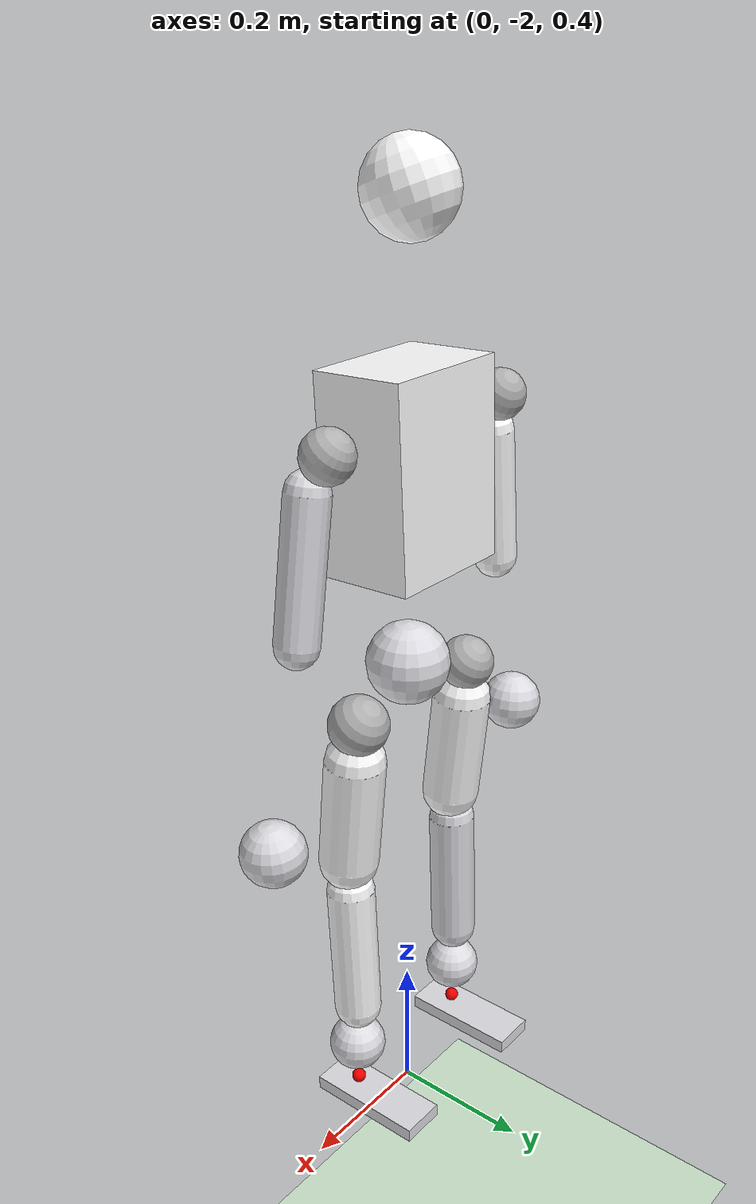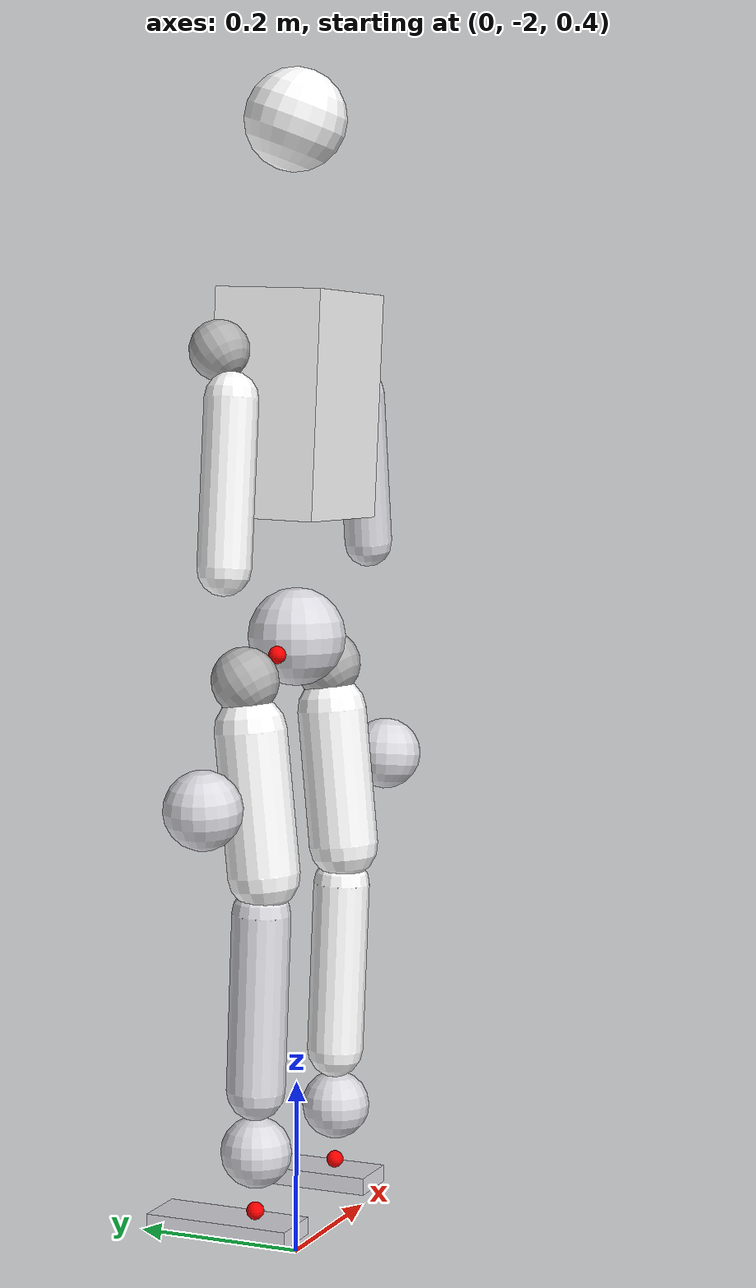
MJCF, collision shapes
<mujoco model="mini_phybot">
  <compiler angle="radian" meshdir="../meshes/" autolimits="true"/>
  <option timestep="0.002" iterations='10' solver='PGS' gravity='0 0 -9.81' apirate='1000'>
  </option>
  <size njmax="500" nconmax="100" />
  <default>
      <geom  condim='4' solref='0.001 2' friction='1.0 0.5 0.5'/>
      <equality solref='0.001 2'/>
  </default>
  <visual>
      <quality shadowsize='4096'/>
      <map force="0.1" zfar="30" znear='0.05'/>
      <rgba haze="0.15 0.25 0.35 1"/>
      <global offwidth="2560" offheight="1440" elevation="-20" azimuth="120"/>
  </visual>
  <default>
      <default class="phybot">
          <joint damping="1" armature="0.1"/>
          <default class="visual">
              <geom type="mesh" contype="0" conaffinity="0" group="2" />
          </default>
          <default class="collision">
              <geom group="3" mass="0" density="0" friction="1.0 0.5 0.5" />
              <default class="base_collision">
                  <geom type="capsule" size=".014" />
              </default>
          </default>
          <site size="0.001" rgba="0.5 0.5 0.5 0.3" group="4"/>
      </default>
  </default>
  <asset>
      <texture type="skybox" builtin="gradient" rgb1=".3 .5 .7" rgb2="0 0 0" width="32" height="512"/>
      <texture name="body" type="cube" builtin="flat" mark="cross" width="128" height="128" rgb1="0.8 0.6 0.4" rgb2="0.8 0.6 0.4" markrgb="1 1 1" random="0.01"/>
      <material name="body" texture="body" texuniform="true" rgba="0.8 0.6 .4 1"/>
      <texture name="grid" type="2d" builtin="checker" width="512" height="512" rgb1=".1 .2 .3" rgb2=".2 .3 .4"/>
      <material name="grid" texture="grid" texrepeat="1 1" texuniform="true" reflectance="0.02"/>
  </asset>
  <asset>
    <mesh name="base_link" file="base_link.STL"/>
    <mesh name="waist_yaw" file="waist_yaw.STL"/>
    <mesh name="neck_yaw" file="neck_yaw.STL"/>
    <mesh name="neck_pitch" file="neck_pitch.STL"/>
    <mesh name="right_shoulder_pitch" file="right_shoulder_pitch.STL"/>
    <mesh name="right_shoulder_roll" file="right_shoulder_roll.STL"/>
    <mesh name="right_shoulder_yaw" file="right_shoulder_yaw.STL"/>
    <mesh name="right_elbow_pitch" file="right_elbow_pitch.STL"/>
    <mesh name="right_elbow_yaw" file="right_elbow_yaw.STL"/>
    <mesh name="left_shoulder_pitch" file="left_shoulder_pitch.STL"/>
    <mesh name="left_shoulder_roll" file="left_shoulder_roll.STL"/>
    <mesh name="left_shoulder_yaw" file="left_shoulder_yaw.STL"/>
    <mesh name="left_elbow_pitch" file="left_elbow_pitch.STL"/>
    <mesh name="left_elbow_yaw" file="left_elbow_yaw.STL"/>
    <mesh name="right_hip_pitch" file="right_hip_pitch.STL"/>
    <mesh name="right_hip_roll" file="right_hip_roll.STL"/>
    <mesh name="right_hip_yaw" file="right_hip_yaw.STL"/>
    <mesh name="right_knee" file="right_knee.STL"/>
    <mesh name="right_ankle_pitch" file="right_ankle_pitch.STL"/>
    <mesh name="right_ankle_roll" file="right_ankle_roll.STL"/>
    <mesh name="left_hip_pitch" file="left_hip_pitch.STL"/>
    <mesh name="left_hip_roll" file="left_hip_roll.STL"/>
    <mesh name="left_hip_yaw" file="left_hip_yaw.STL"/>
    <mesh name="left_knee" file="left_knee.STL"/>
    <mesh name="left_ankle_pitch" file="left_ankle_pitch.STL"/>
    <mesh name="left_ankle_roll" file="left_ankle_roll.STL"/>
    <texture builtin="gradient" height="100" rgb1=".4 .5 .6" rgb2="0 0 0" type="skybox" width="100"/>
    <texture name="texplane" type="2d" builtin="checker" rgb1=".2 .3 .4" rgb2=".1 0.15 0.2" width="100" height="100"/>
    <material name="MatPlane" reflectance="0.5" texture="texplane" texrepeat="1 1" texuniform="true"/>
  </asset>

  <worldbody>
    <geom name="floor" friction="1 .5 .5" pos="0 0 0.0" size="50 50 0.125" type="plane" material="MatPlane" condim="3" conaffinity="1" contype="1" group="2" rgba="0.8 0.9 0.8 1"></geom>
    <light cutoff="100" diffuse="1 1 1" dir="-0 0 -1.3" directional="true" exponent="1" pos="0 0 1.3" specular=".1 .1 .1" castshadow="false"/>
    <body name="base_link" pos="0 -2.0 1.1" euler="0 0 1.5708" childclass="phybot" >
      <inertial pos="0.00019197 -1.3871e-05 0.02499" quat="0.999999 0.000213974 0.00165245 0.00039263" mass="3.483" diaginertia="0.0124403 0.0118407 0.00569611"/>
      <joint name="floating_base_joint" type="free" limited="false" actuatorfrclimited="false"/>
      <geom name="base_link_visual" type="mesh" contype="0" conaffinity="0" group="1" density="0" rgba="0.86667 0.86667 0.8902 1" mesh="base_link"/>
      <geom name="base_link_collision" type="sphere" rgba="0.86667 0.86667 0.8902 1" pos="3.93914348e-04 -2.38613598e-05  1.63388587e-02" quat="9.99968586e-01  4.04744226e-04  7.65710487e-03 -2.00791714e-03" size="0.056"/>
      <body name="left_hip_pitch" pos="-0.0011251 0.056687 0">
        <inertial pos="-0.0068808 0.054848 -1.3414e-09" quat="0.29053 0.644665 -0.29053 0.644665" mass="0.8954" diaginertia="0.00078395 0.000707642 0.000669938"/>
        <joint name="left_hip_pitch" pos="0 0 0" axis="0 1 0" range="-2.62 2.62" actuatorfrcrange="-200 200"/>
        <site type="sphere" name="left_hip_pitch" pos="0 0 0" size="0.01" rgba="1 0 0 1" group="0" />
        <geom name="left_hip_pitch_visual" type="mesh" contype="0" conaffinity="0" group="1" density="0" rgba="0.86667 0.86667 0.8902 1" mesh="left_hip_pitch"/>
        <body name="left_hip_roll" pos="0.0011251 0.057313 0">
          <inertial pos="0.01492 8.7304e-06 -0.028255" quat="0.938259 0.00179946 -0.345928 -0.00066454" mass="0.108953" diaginertia="0.000179064 0.000147599 0.000115645"/>
          <joint name="left_hip_roll" pos="0 0 0" axis="1 0 0" range="-0.05 2.79" actuatorfrcrange="-80 80"/>
          <site type="sphere" name="left_hip_roll" pos="0 0 0" size="0.01" rgba="1 0 0 1" group="0" />
          <geom name="left_hip_roll_visual" type="mesh" contype="0" conaffinity="0" group="1" density="0" rgba="0.69804 0.69804 0.69804 1" mesh="left_hip_roll"/>
          <geom name="left_hip_roll_collision" type="sphere" rgba="0.69804 0.69804 0.69804 1" pos="1.20070147e-02  5.07088204e-08 -2.46034415e-02" quat="9.52643596e-01 1.37744501e-05 3.04089096e-01 7.55203554e-06" size="0.038"/>
          <body name="left_hip_yaw" pos="0 0 -0.0555">
            <inertial pos="-0.0008226 -0.00012128 -0.06312" quat="0.999666 -0.00344606 0.0253512 -0.0035266" mass="0.934948" diaginertia="0.00294268 0.00279093 0.000837028"/>
            <joint name="left_hip_yaw" pos="0 0 0" axis="0 0 1" range="-2.09 2.09" actuatorfrcrange="-58 58"/>
            <site type="sphere" name="left_hip_yaw" pos="0 0 0" size="0.01" rgba="1 0 0 1" group="0" />
            <geom name="left_hip_yaw_visual" type="mesh" contype="0" conaffinity="0" group="1" density="0" rgba="1 1 1 1" mesh="left_hip_yaw"/>
            <geom name="left_hip_yaw_collision" type="capsule" rgba="1 1 1 1" pos="-0.00243323 -0.00015081 -0.10370309" quat="0.99880757 -0.00296817  0.04855064 -0.00417929" size="0.04064149 0.08 0."/>
            <body name="left_knee" pos="-0.015 0 -0.1755">
              <inertial pos="0.0057066 0.00012257 -0.094854" quat="0.712658 -0.0171167 -0.0156661 0.701128" mass="2.02725" diaginertia="0.0228032 0.022792 0.00193946"/>
              <joint name="left_knee" pos="0 0 0" axis="0 1 0" range="0 2.44" actuatorfrcrange="-80 80"/>
              <site type="sphere" name="left_knee" pos="0 0 0" size="0.01" rgba="1 0 0 1" group="0" />
              <geom name="left_knee_visual" type="mesh" contype="0" conaffinity="0" group="1" density="0" rgba="0.86667 0.86667 0.8902 1" mesh="left_knee"/>
              <geom name="left_knee_collision" type="capsule" rgba="0.86667 0.86667 0.8902 1" pos="1.10484653e-02 -3.43982299e-05 -1.52084793e-01" quat="9.99842996e-01 -8.01998231e-04 -1.76969547e-02 -3.96174269e-04" size="0.0330737  0.10 0."/>
              <body name="left_ankle_pitch" pos="0.015 0 -0.322">
                <inertial pos="-0.00055628 0.0010747 -0.021143" quat="0.99979 -0.014192 0.0147276 0.00123859" mass="1.0809" diaginertia="0.00163322 0.00159632 0.000679905"/>
                <joint name="left_ankle_pitch" pos="0 0 0" axis="0 1 0" range="-1.4 1.4" actuatorfrcrange="-58 58"/>
                <site type="sphere" name="left_ankle_pitch" pos="0 0 0" size="0.01" rgba="1 0 0 1" group="0" />
                <geom name="left_ankle_pitch_visual" type="mesh" contype="0" conaffinity="0" group="1" density="0" rgba="0.86667 0.86667 0.8902 1" mesh="left_ankle_pitch"/>
                <geom name="left_ankle_pitch_collision" type="sphere" rgba="0.86667 0.86667 0.8902 1" pos="-0.00049111 -0.00109902 -0.0" quat="0.999841    0.01111152  0.01377939 -0.00215429" size="0.04"/>
                <body name="left_ankle_roll" pos="0 0 -0.067">
                  <inertial pos="0.054011 3.8519e-08 -0.01971" quat="0 0.714748 0 0.699382" mass="0.333227" diaginertia="0.00087423 0.00080699 0.00015472"/>
                  <joint name="left_ankle_roll" pos="0 0 0" axis="1 0 0" range="-0.61 0.61" actuatorfrcrange="-9 9"/>
                  <site type="sphere" name="left_ankle_roll" pos="0 0 0" size="0.01" rgba="1 0 0 1" group="0" />
                  <geom name="left_ankle_roll_visual" type="mesh" contype="0" conaffinity="0" group="1" density="0" rgba="0.86667 0.86667 0.8902 1" mesh="left_ankle_roll"/>
                  <geom name="left_ankle_roll_collision_1" type="box" rgba="0.86667 0.86667 0.8902 1" pos="0.035  0.0 -0.02" quat="0 0.707 0 0.707" size="0.01 0.032 0.085"/>
                </body>
              </body>
            </body>
          </body>
        </body>
      </body>

      <body name="right_hip_pitch" pos="-0.0011251 -0.056687 0">
        <inertial pos="-0.00688082 -0.0548479 1.34132e-09" quat="0.644665 0.29053 -0.644665 0.29053" mass="0.8954" diaginertia="0.00078395 0.000707642 0.000669938"/>
        <joint name="right_hip_pitch" pos="0 0 0" axis="0 1 0" range="-2.62 2.62" actuatorfrcrange="-200 200"/>
        <geom name="right_hip_pitch_visual" type="mesh" contype="0" conaffinity="0" group="1" density="0" rgba="0.866667 0.866667 0.890196 1" mesh="right_hip_pitch"/>
        <body name="right_hip_roll" pos="0.0011251 -0.057313 0">
          <inertial pos="0.0149201 8.76282e-06 -0.0282555" quat="0.938262 0.00179705 0.34592 0.000663076" mass="0.108953" diaginertia="0.000179066 0.000147599 0.000115647"/>
          <joint name="right_hip_roll" pos="0 0 0" axis="1 0 0" range="-2.79 0.05" actuatorfrcrange="-80 80"/>
          <geom name="right_hip_roll_visual" type="mesh" contype="0" conaffinity="0" group="1" density="0" rgba="0.698039 0.698039 0.698039 1" mesh="right_hip_roll"/>
          <geom name="right_hip_roll_collision" type="sphere" rgba="0.698039 0.698039 0.698039 1" pos="1.20070147e-02  1.03464490e-07 -2.46034414e-02" quat="9.52643596e-01 1.10664726e-05 3.04089097e-01 6.66475968e-06" size="0.04"/>
          <body name="right_hip_yaw" pos="0 0 -0.0555">
            <inertial pos="-0.000822864 0.000123815 -0.0631195" quat="0.999666 0.00353226 0.025353 0.00366827" mass="0.934946" diaginertia="0.00294266 0.00279091 0.000837013"/>
            <joint name="right_hip_yaw" pos="0 0 0" axis="0 0 1" range="-2.09 2.09" actuatorfrcrange="-58 58"/>
            <geom name="right_hip_yaw_visual" type="mesh" contype="0" conaffinity="0" group="1" density="0" rgba="1 1 1 1" mesh="right_hip_yaw"/>
            <geom name="right_hip_yaw_collision" type="capsule" rgba="1 1 1 1" pos="-0.0024334   0.00012787 -0.1037029" quat="0.99880961 0.00283586 0.04854734 0.00380364" size="0.04064174 0.08 0."/>
            <body name="right_knee" pos="-0.015 0 -0.1755">
              <inertial pos="0.00571152 -7.66968e-05 -0.0951258" quat="0.681839 -0.0159342 -0.016778 0.731136" mass="2.02816" diaginertia="0.0228498 0.0228396 0.00194092"/>
              <joint name="right_knee" pos="0 0 0" axis="0 1 0" range="0 2.44" actuatorfrcrange="-80 80"/>
              <geom name="right_knee_visual" type="mesh" contype="0" conaffinity="0" group="1" density="0" rgba="1 1 1 1" mesh="right_knee"/>
              <geom name="right_knee_collision" type="capsule" rgba="1 1 1 1" pos="0.01106952  0.00062785 -0.15450012" quat="9.99836214e-01  5.17738930e-03 -1.73417982e-02  3.80929315e-05" size="0.0331164  0.10 0."/>
              <body name="right_ankle_pitch" pos="0.015 0 -0.322">
                <inertial pos="-0.000557668 -0.00117399 -0.0211957" quat="0.999784 0.0146083 0.0147284 -0.00119151" mass="1.08" diaginertia="0.00163124 0.00159575 0.000678311"/>
                <joint name="right_ankle_pitch" pos="0 0 0" axis="0 1 0" range="-1.4 1.4" actuatorfrcrange="-58 58"/>
                <geom name="right_ankle_pitch_visual" type="mesh" contype="0" conaffinity="0" group="1" density="0" rgba="0.866667 0.866667 0.890196 1" mesh="right_ankle_pitch"/>
                <geom name="right_ankle_pitch_collision" type="sphere" rgba="0.866667 0.866667 0.890196 1" pos="-0.00050679 -0.0005768  -0.0" quat="0.99981159  0.00866058  0.01378152 -0.01057623" size="0.04"/>
                <body name="right_ankle_roll" pos="0 0 -0.067">
                  <inertial pos="0.0539128 7.87404e-05 -0.019726" quat="-0.0013763 0.714841 -0.00043457 0.699285" mass="0.332259" diaginertia="0.000872388 0.000805801 0.000153921"/>
                  <joint name="right_ankle_roll" pos="0 0 0" axis="1 0 0" range="-0.61 0.61" actuatorfrcrange="-9 9"/>
                  <site type="sphere" name="right_foot_joint" pos="0 0 0" size="0.01" rgba="1 0 0 1" group="0" />
                  <geom name="right_ankle_roll_visual" type="mesh" contype="0" conaffinity="0" group="1" density="0" rgba="0.866667 0.866667 0.890196 1" mesh="right_ankle_roll"/>
                  <geom name="right_ankle_roll_collision" type="box" rgba="0.86667 0.86667 0.8902 1" pos="0.035 0.0 -0.02" quat="0 0.707 0 0.707" size="0.01 0.032 0.085"/>
                </body>
              </body>
            </body>
          </body>
        </body>
      </body>

      <body name="waist_yaw" pos="0 0 0.1415">
        <inertial pos="0.00567471 0.000264089 0.194214" quat="0.999817 -0.00219528 -0.0189929 -0.00030631" mass="4.84652798" diaginertia="0.134745 0.116272 0.0399232"/>
        <joint name="waist_yaw" pos="0 0 0" axis="0 0 1" range="-2.62 2.63" actuatorfrcrange="-58 58"/>
        <geom name="waist_yaw_visual" type="mesh" contype="0" conaffinity="0" group="1" density="0" rgba="1 1 1 1" mesh="waist_yaw"/>
        <geom name="waist_yaw_collision" type="box" rgba="1 1 1 1" pos="0.00027658 0.0003768  0.13735023" quat="0.99980685  0.00296678 -0.01930783 -0.00216015" size="0.06297727 0.09026719 0.12648224"/>
        <body name="neck_yaw" pos="0 0 0.2585">
          <inertial pos="3.0572e-05 0.0015973 0.054802" mass="0.38219565" diaginertia="0.00024364 0.00016262 0.00017663" />
          <geom name="neck_yaw_visual" type="mesh" contype="0" conaffinity="0" group="1" density="0" rgba="0.86667 0.86667 0.8902 1" mesh="neck_yaw"/>
          <body name="neck_pitch" pos="0 0 0.06">
            <inertial pos="0.0049822 0.0013005 0.071722" mass="1.03622479" diaginertia="0.00310958 0.00342399 0.00281571" />
            <geom name="neck_pitch_visual" type="mesh" contype="0" conaffinity="0" group="1" density="0" rgba="1 1 1 1" mesh="neck_pitch"/>
            <geom name="neck_pitch_collision" type="sphere" rgba="1 1 1 1" pos="0.00140693 0.00164664 0.1344567" quat="0.98329388  0.04076448 -0.17500323  0.02907356" size="0.058"/>
          </body>
        </body>
        <body name="left_shoulder_pitch" pos="0 0.10453 0.21055">
          <inertial pos="0.0018418 0.053411 -0.00057051" quat="0.572419 0.415147 -0.575056 0.411461" mass="0.780785" diaginertia="0.000644415 0.00053622 0.000519475"/>
          <joint name="left_shoulder_pitch" pos="0 0 0" axis="0 1 0" range="-2.62 2.62" actuatorfrcrange="-58 58"/>
          <geom name="left_shoulder_pitch_visual" type="mesh" contype="0" conaffinity="0" group="1" density="0" rgba="0.86667 0.86667 0.8902 1" mesh="left_shoulder_pitch"/>
          <body name="left_shoulder_roll" pos="0 0.057466 -0.00054825">
            <inertial pos="0.020623 0.0032915 -0.018736" quat="0.944358 0.0823438 0.317238 0.0277148" mass="0.080708" diaginertia="0.000116429 8.78214e-05 6.44694e-05"/>
            <joint name="left_shoulder_roll" pos="0 0 0" axis="1 0 0" range="-0.26 2.62" actuatorfrcrange="-58 58"/>
            <geom name="left_shoulder_roll_visual" type="mesh" contype="0" conaffinity="0" group="1" density="0" rgba="0.69804 0.69804 0.69804 1" mesh="left_shoulder_roll"/>
            <geom name="left_shoulder_roll_collision" type="sphere" rgba="0.69804 0.69804 0.69804 1" pos="0.01843552  0.00270877 -0.01534595" quat="0.94457756 0.08253748 0.31653292 0.02770769" size="0.033"/>
            <body name="left_shoulder_yaw" pos="0 0.0078142 -0.044316" quat="0.996195 0.0871543 0 0">
              <inertial pos="-0.00017802 -0.0043851 -0.12299" quat="0.99815 0.0607605 -0.000729033 0.00187612" mass="1.29002" diaginertia="0.00519542 0.00506113 0.000822539"/>
              <joint name="left_shoulder_yaw" pos="0 0 0" axis="0 0 1" range="-1.75 1.75" actuatorfrcrange="-9 9"/>
              <geom name="left_shoulder_yaw_visual" type="mesh" contype="0" conaffinity="0" group="1" density="0" rgba="1 1 1 1" mesh="left_shoulder_yaw"/>
              <geom name="left_shoulder_yaw_collision" type="capsule" rgba="1 1 1 1" pos="-0.00106725 -0.00436913 -0.11415927" quat="0.99789881 -0.04428609 -0.0020297   0.04725034" size="0.02940662 0.09086922 0."/>
              <body name="left_elbow_pitch" pos="0 0 -0.163">
                <inertial pos="-0.00314127 0.00558877 -0.082421" quat="0.471989 -0.0380722 0.00767037 0.880748" mass="0.564228" diaginertia="0.00146761 0.00141895 0.000244244"/>
                <joint name="left_elbow_pitch" pos="0 0 0" axis="0 1 0" range="-2.27 0.05" actuatorfrcrange="-58 58"/>
                <geom name="left_elbow_pitch_visual" type="mesh" contype="0" conaffinity="0" group="1" density="0" rgba="0.86667 0.86667 0.8902 1" mesh="left_elbow_pitch"/>
                <geom name="left_elbow_pitch_collision" type="sphere" rgba="0.86667 0.86667 0.8902 1" pos="-0.00448216  0.005 -0.3" quat="0.49779606 -0.07461727  0.11805629  0.8559755" size="0.043"/>
                <geom name="left_elbow_yaw_visual" pos="0.0001107 0 -0.3" quat="1 2.49972e-08 -0.00037652 6.639e-05" type="mesh" contype="0" conaffinity="0" group="1" density="0" rgba="0.86667 0.86667 0.8902 1" mesh="left_elbow_yaw"/>
              </body>
            </body>
          </body>
        </body>
        <body name="right_shoulder_pitch" pos="0 -0.10453 0.21055">
          <inertial pos="0.0018418 -0.053411 -0.00057052" quat="0.415147 0.572419 -0.411461 0.575056" mass="0.780785" diaginertia="0.000644415 0.00053622 0.000519475"/>
          <joint name="right_shoulder_pitch" pos="0 0 0" axis="0 1 0" range="-2.62 2.62" actuatorfrcrange="-58 58"/>
          <geom name="right_shoulder_pitch_visual" type="mesh" contype="0" conaffinity="0" group="1" density="0" rgba="0.86667 0.86667 0.8902 1" mesh="right_shoulder_pitch"/>
          <body name="right_shoulder_roll" pos="0 -0.057466 -0.00054825">
            <inertial pos="0.020623 -0.0033151 -0.018731" quat="0.944287 -0.0829977 0.317271 -0.0277885" mass="0.0807037" diaginertia="0.000116436 8.78154e-05 6.44681e-05"/>
            <joint name="right_shoulder_roll" pos="0 0 0" axis="1 0 0" range="-2.62 0.26" actuatorfrcrange="-58 58"/>
            <geom name="right_shoulder_roll_visual" type="mesh" contype="0" conaffinity="0" group="1" density="0" rgba="0.69804 0.69804 0.69804 1" mesh="right_shoulder_roll"/>
            <geom name="right_shoulder_roll_collision" type="sphere" rgba="0.69804 0.69804 0.69804 1" pos="0.01843552 -0.00270322 -0.01534693" quat="0.94455978 -0.08274063  0.31653546 -0.02767861" size="0.033"/>
            <body name="right_shoulder_yaw" pos="0 -0.0078142 -0.044316" quat="0.996195 -0.0871543 0 0">
              <inertial pos="-0.0011992 0.0019757 -0.11881" quat="0.997208 -0.0739022 -0.00395922 -0.00999245" mass="1.26066" diaginertia="0.00514181 0.00504935 0.000752059"/>
              <joint name="right_shoulder_yaw" pos="0 0 0" axis="0 0 1" range="-1.75 1.75" actuatorfrcrange="-9 9"/>
              <geom name="right_shoulder_yaw_visual" type="mesh" contype="0" conaffinity="0" group="1" density="0" rgba="0.86667 0.86667 0.8902 1" mesh="right_shoulder_yaw"/>
              <geom name="right_shoulder_yaw_collision" type="capsule" rgba="0.86667 0.86667 0.8902 1" pos="-0.00486255  0.00046947 -0.1060437" quat="0.65232868  0.00084616 -0.00687765  0.75790453" size="0.02823167 0.09021677 0."/>
              <body name="right_elbow_pitch" pos="0 0 -0.163">
                <inertial pos="-0.00314119 -0.00557019 -0.0824179" quat="0.881343 0.00772471 -0.0380508 0.470879" mass="0.564269" diaginertia="0.00146787 0.00141899 0.000244391"/>
                <joint name="right_elbow_pitch" pos="0 0 0" axis="0 1 0" range="-2.27 0.05" actuatorfrcrange="-58 58"/>
                <geom name="right_elbow_pitch_visual" type="mesh" contype="0" conaffinity="0" group="1" density="0" rgba="0.86667 0.86667 0.8902 1" mesh="right_elbow_pitch"/>
                <geom name="right_elbow_pitch_collision" type="sphere" rgba="0.86667 0.86667 0.8902 1" pos="-0.00447918 -0.009 -0.3" quat="0.85589598  0.11822819 -0.07474629  0.49787263" size="0.043"/>
                <geom name="right_elbow_yaw_visual" pos="0.0001107 0 -0.3" quat="1 -2.49972e-08 -0.00037652 -6.639e-05" type="mesh" contype="0" conaffinity="0" group="1" density="0" rgba="0.86667 0.86667 0.8902 1" mesh="right_elbow_yaw"/>
              </body>
            </body>
          </body>
        </body>
      </body>
      <body name="imu_link" pos="-0.0 0 0.0">
        <inertial pos="0 0 0" mass="0" diaginertia="0 0 0" />
        <geom class="visual" type="sphere" rgba="0.792157 0.819608 0.933333 1" size="0.02" />
        <site name="site_imu" pos="0.01 0 0" size='0.01 0.01 0.01' group="4"/>
      </body>
    </body>
  </worldbody>
  <actuator>
      <motor name="left_hip_pitch" joint="left_hip_pitch" gear="1" ctrllimited="true" ctrlrange="-500 500" />
      <motor name="left_hip_roll" joint="left_hip_roll" gear="1" ctrllimited="true" ctrlrange="-200 200" />
      <motor name="left_hip_yaw" joint="left_hip_yaw" gear="1" ctrllimited="true" ctrlrange="-200 200" />
      <motor name="left_knee" joint="left_knee" gear="1" ctrllimited="true" ctrlrange="-500 500" />
      <motor name="left_ankle_pitch" joint="left_ankle_pitch" gear="1" ctrllimited="true" ctrlrange="-200.0 200.0" />
      <motor name="left_ankle_roll" joint="left_ankle_roll" gear="1" ctrllimited="true" ctrlrange="-30 30" />
      <motor name="right_hip_pitch" joint="right_hip_pitch" gear="1" ctrllimited="true" ctrlrange="-500 500" />
      <motor name="right_hip_roll" joint="right_hip_roll" gear="1" ctrllimited="true" ctrlrange="-200 200" />
      <motor name="right_hip_yaw" joint="right_hip_yaw" gear="1" ctrllimited="true" ctrlrange="-200 200" />
      <motor name="right_knee" joint="right_knee" gear="1" ctrllimited="true" ctrlrange="-500 500" />
      <motor name="right_ankle_pitch" joint="right_ankle_pitch" gear="1" ctrllimited="true" ctrlrange="-200.0 200.0" />
      <motor name="right_ankle_roll" joint="right_ankle_roll" gear="1" ctrllimited="true" ctrlrange="-30 30" />
      <motor name="waist_yaw" joint="waist_yaw" gear="1" ctrllimited="true" ctrlrange="-230 230" />
      <motor name="left_shoulder_pitch" joint="left_shoulder_pitch" gear="1" ctrllimited="true" ctrlrange="-200 200" />
      <motor name="left_shoulder_roll" joint="left_shoulder_roll" gear="1" ctrllimited="true" ctrlrange="-200 200" />
      <motor name="left_shoulder_yaw" joint="left_shoulder_yaw" gear="1" ctrllimited="true" ctrlrange="-58 58" />
      <motor name="left_elbow_pitch" joint="left_elbow_pitch" gear="1" ctrllimited="true" ctrlrange="-58 58" />
      <motor name="right_shoulder_pitch" joint="right_shoulder_pitch" gear="1" ctrllimited="true" ctrlrange="-200 200" />
      <motor name="right_shoulder_roll" joint="right_shoulder_roll" gear="1" ctrllimited="true" ctrlrange="-200 200" />
      <motor name="right_shoulder_yaw" joint="right_shoulder_yaw" gear="1" ctrllimited="true" ctrlrange="-58 58" />
      <motor name="right_elbow_pitch" joint="right_elbow_pitch" gear="1" ctrllimited="true" ctrlrange="-58 58" />
  </actuator>
  <sensor>
      <framequat name="baselink-quat" objtype="site" objname="site_imu" />
      <velocimeter name="baselink-velocity" site="site_imu" />
      <gyro name="baselink-gyro" site="site_imu" />
      <accelerometer name="baselink-baseAcc" site="site_imu" />
  </sensor>

  <keyframe>
    <key name="home"
      qpos="0 0 0.68 1 0 0 0
      -0.15 0 0 0.3 -0.15 0 -0.15 0 0 0.3 -0.15 0
       0 0 0 0 0 0 0 0 0" />
  </keyframe>
</mujoco>
